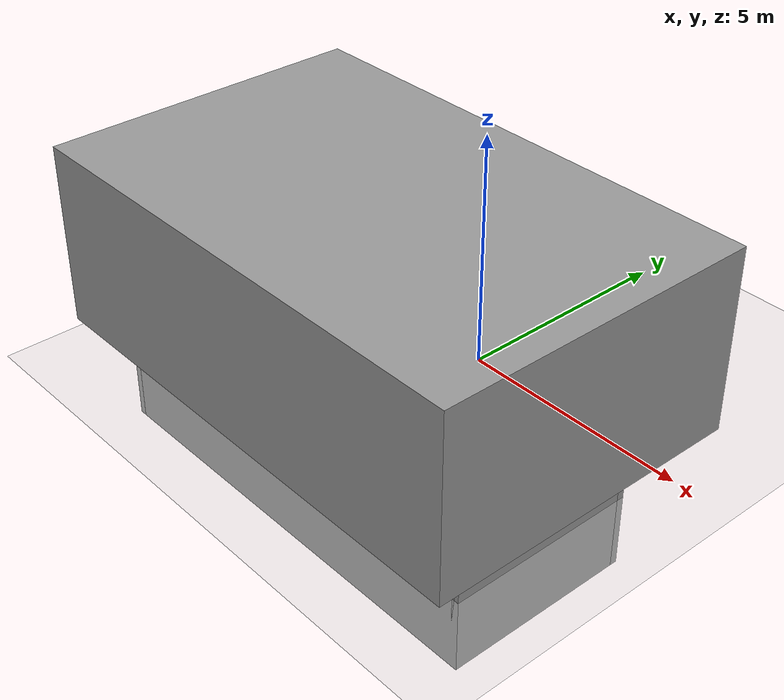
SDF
<sdf version="1.6">
 <world name="default">
  <light name="sun" type="directional">
   <pose>0 0 10 0 -0 0</pose>
   <diffuse>0.8 0.8 0.8 1</diffuse>
   <specular>0.1 0.1 0.1 1</specular>
   <attenuation>
    <range>1000</range>
    <constant>0.9</constant>
    <linear>0.01</linear>
    <quadratic>0.001</quadratic>
   </attenuation>
   <direction>-0.5 0.5 -1</direction>
  </light>
  <model name="ground_plane">
   <static>1</static>
   <link name="link">
    <collision name="collision">
     <geometry><plane><normal>0 0 1</normal><size>100 100</size></plane></geometry>
     <surface><friction><ode><mu>100</mu><mu2>50</mu2></ode></friction></surface>
    </collision>
    <visual name="visual">
     <cast_shadows>0</cast_shadows>
     <geometry><plane><normal>0 0 1</normal><size>100 100</size></plane></geometry>
     <material>
      <script><uri>file://media/materials/scripts/gazebo.material</uri><name>Gazebo/Grey</name></script>
     </material>
    </visual>
   </link>
  </model>
  <gravity>0 0 -9.8</gravity>
  <magnetic_field>6e-06 2.3e-05 -4.2e-05</magnetic_field>
  <atmosphere type="adiabatic"/>
  <physics name="default_physics" default="0" type="ode">
   <max_step_size>0.001</max_step_size>
   <real_time_factor>1</real_time_factor>
   <real_time_update_rate>1000</real_time_update_rate>
  </physics>
  <scene><ambient>0.4 0.4 0.4 1</ambient><background>0.7 0.7 0.7 1</background><shadows>1</shadows></scene>
  <spherical_coordinates>
   <surface_model>EARTH_WGS84</surface_model>
   <latitude_deg>0</latitude_deg>
   <longitude_deg>0</longitude_deg>
   <elevation>0</elevation>
   <heading_deg>0</heading_deg>
  </spherical_coordinates>
  <model name="Untitled">
   <pose>-0.075 -2.975 -1.55179 0 -0 0</pose>
   <link name="Wall_0">
    <collision name="Wall_0_Collision">
     <geometry><box><size>4 0.15 2.5</size></box></geometry>
     <pose>0 0 1.25 0 -0 0</pose>
    </collision>
    <visual name="Wall_0_Visual">
     <pose>0 0 1.25 0 -0 0</pose>
     <geometry><box><size>4 0.15 2.5</size></box></geometry>
     <material>
      <script><uri>file://media/materials/scripts/gazebo.material</uri><name>Gazebo/Grey</name></script>
      <ambient>1 1 1 1</ambient>
     </material>
    </visual>
    <pose>-4.675 0 0 0 0 -1.5708</pose>
   </link>
   <link name="Wall_1">
    <collision name="Wall_1_Collision">
     <geometry><box><size>9.5 0.15 2.5</size></box></geometry>
     <pose>0 0 1.25 0 -0 0</pose>
    </collision>
    <visual name="Wall_1_Visual">
     <pose>0 0 1.25 0 -0 0</pose>
     <geometry><box><size>9.5 0.15 2.5</size></box></geometry>
     <material>
      <script><uri>file://media/materials/scripts/gazebo.material</uri><name>Gazebo/Grey</name></script>
      <ambient>1 1 1 1</ambient>
     </material>
    </visual>
    <pose>0 -1.925 0 0 -0 0</pose>
   </link>
   <link name="Wall_2">
    <collision name="Wall_2_Collision">
     <geometry><box><size>4 0.15 2.5</size></box></geometry>
     <pose>0 0 1.25 0 -0 0</pose>
    </collision>
    <visual name="Wall_2_Visual">
     <pose>0 0 1.25 0 -0 0</pose>
     <geometry><box><size>4 0.15 2.5</size></box></geometry>
     <material>
      <script><uri>file://media/materials/scripts/gazebo.material</uri><name>Gazebo/Grey</name></script>
      <ambient>1 1 1 1</ambient>
     </material>
    </visual>
    <pose>4.675 0 0 0 -0 1.5708</pose>
   </link>
   <link name="Wall_3">
    <collision name="Wall_3_Collision">
     <geometry><box><size>9.5 0.15 2.5</size></box></geometry>
     <pose>0 0 1.25 0 -0 0</pose>
    </collision>
    <visual name="Wall_3_Visual">
     <pose>0 0 1.25 0 -0 0</pose>
     <geometry><box><size>9.5 0.15 2.5</size></box></geometry>
     <material>
      <script><uri>file://media/materials/scripts/gazebo.material</uri><name>Gazebo/Grey</name></script>
      <ambient>1 1 1 1</ambient>
     </material>
    </visual>
    <pose>0 1.925 0 0 -0 3.14159</pose>
   </link>
   <link name="Wall_5">
    <collision name="Wall_5_Collision">
     <geometry><box><size>2 0.15 2.5</size></box></geometry>
     <pose>0 0 1.25 0 -0 0</pose>
    </collision>
    <visual name="Wall_5_Visual">
     <pose>0 0 1.25 0 -0 0</pose>
     <geometry><box><size>2 0.15 2.5</size></box></geometry>
     <material>
      <script><uri>file://media/materials/scripts/gazebo.material</uri><name>Gazebo/Grey</name></script>
      <ambient>1 1 1 1</ambient>
     </material>
    </visual>
    <pose>-2.835 -0.07 0 0 0 -1.5708</pose>
   </link>
   <link name="Wall_6">
    <collision name="Wall_6_Collision">
     <geometry><box><size>6 0.15 2.5</size></box></geometry>
     <pose>0 0 1.25 0 -0 0</pose>
    </collision>
    <visual name="Wall_6_Visual">
     <pose>0 0 1.25 0 -0 0</pose>
     <geometry><box><size>6 0.15 2.5</size></box></geometry>
     <material>
      <script><uri>file://media/materials/scripts/gazebo.material</uri><name>Gazebo/Grey</name></script>
      <ambient>1 1 1 1</ambient>
     </material>
    </visual>
    <pose>0.09 -0.995 0 0 -0 0</pose>
   </link>
   <link name="Wall_7">
    <collision name="Wall_7_Collision">
     <geometry><box><size>2 0.15 2.5</size></box></geometry>
     <pose>0 0 1.25 0 -0 0</pose>
    </collision>
    <visual name="Wall_7_Visual">
     <pose>0 0 1.25 0 -0 0</pose>
     <geometry><box><size>2 0.15 2.5</size></box></geometry>
     <material>
      <script><uri>file://media/materials/scripts/gazebo.material</uri><name>Gazebo/Grey</name></script>
      <ambient>1 1 1 1</ambient>
     </material>
    </visual>
    <pose>3.015 -0.07 0 0 -0 1.5708</pose>
   </link>
   <link name="Wall_8">
    <collision name="Wall_8_Collision">
     <geometry><box><size>6 0.15 2.5</size></box></geometry>
     <pose>0 0 1.25 0 -0 0</pose>
    </collision>
    <visual name="Wall_8_Visual">
     <pose>0 0 1.25 0 -0 0</pose>
     <geometry><box><size>6 0.15 2.5</size></box></geometry>
     <material>
      <script><uri>file://media/materials/scripts/gazebo.material</uri><name>Gazebo/Grey</name></script>
      <ambient>1 1 1 1</ambient>
     </material>
    </visual>
    <pose>0.09 0.855 0 0 -0 3.14159</pose>
   </link>
   <static>1</static>
  </model>
  <model name="Untitled1">
   <link name="link_0">
    <pose>-0 1e-06 -0 0 -0 0</pose>
    <inertial>
     <mass>265.486</mass>
     <inertia><ixx>1307.75</ixx><ixy>0</ixy><ixz>0</ixz><iyy>2759.37</iyy><iyz>0</iyz><izz>3438.82</izz></inertia>
    </inertial>
    <visual name="visual">
     <geometry><box><size>10.5131 6.70166 3.76927</size></box></geometry>
     <material>
      <lighting>1</lighting>
      <script><uri>file://media/materials/scripts/gazebo.material</uri><name>Gazebo/Grey</name></script>
      <ambient>0.3 0.3 0.3 1</ambient>
      <diffuse>0.7 0.7 0.7 1</diffuse>
      <specular>0.01 0.01 0.01 1</specular>
      <emissive>0 0 0 1</emissive>
     </material>
    </visual>
    <collision name="collision">
     <geometry><box><size>10.5131 6.70166 3.76927</size></box></geometry>
     <surface>
      <friction>
       <ode><mu>1</mu><mu2>1</mu2><fdir1>0 0 0</fdir1><slip1>0</slip1><slip2>0</slip2></ode>
       <torsional>
        <coefficient>1</coefficient>
        <patch_radius>0</patch_radius>
        <surface_radius>0</surface_radius>
        <use_patch_radius>1</use_patch_radius>
        <ode><slip>0</slip></ode>
       </torsional>
      </friction>
      <bounce><restitution_coefficient>0</restitution_coefficient><threshold>1e+06</threshold></bounce>
      <contact>
       <collide_without_contact>0</collide_without_contact>
       <collide_without_contact_bitmask>1</collide_without_contact_bitmask>
       <collide_bitmask>1</collide_bitmask>
       <ode>
        <soft_cfm>0</soft_cfm>
        <soft_erp>0.2</soft_erp>
        <kp>1e+13</kp>
        <kd>1</kd>
        <max_vel>0.01</max_vel>
        <min_depth>0</min_depth>
       </ode>
       <bullet>
        <split_impulse>1</split_impulse>
        <split_impulse_penetration_threshold>-0.01</split_impulse_penetration_threshold>
        <soft_cfm>0</soft_cfm>
        <soft_erp>0.2</soft_erp>
        <kp>1e+13</kp>
        <kd>1</kd>
       </bullet>
      </contact>
     </surface>
    </collision>
   </link>
   <static>0</static>
   <pose>-0.008483 -2.564 2.83285 0 0 -0.003181</pose>
  </model>
 </world>
</sdf>
